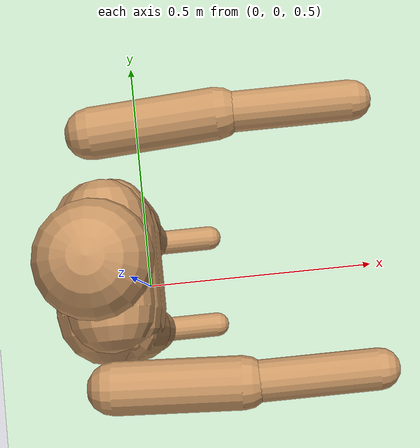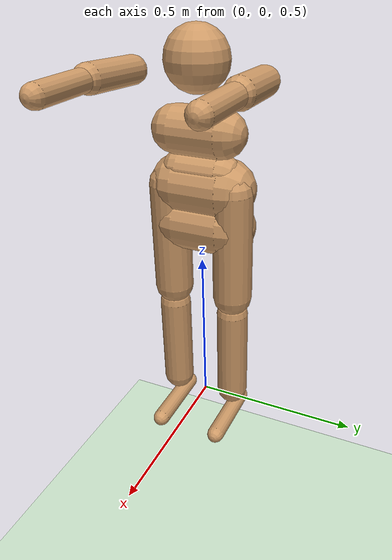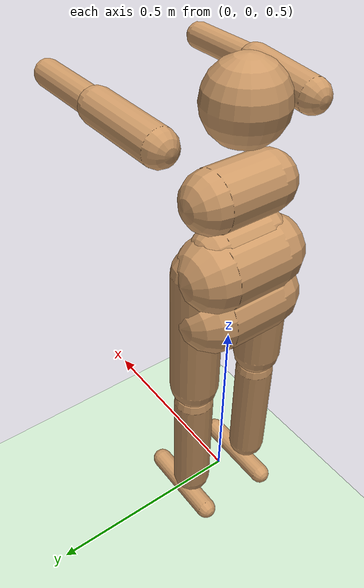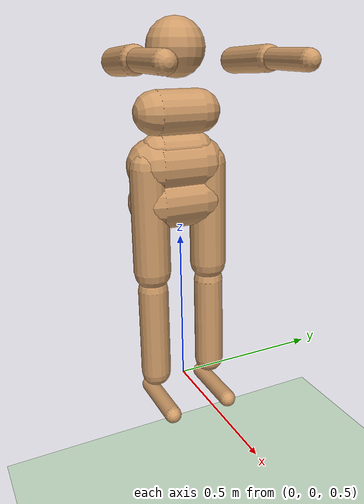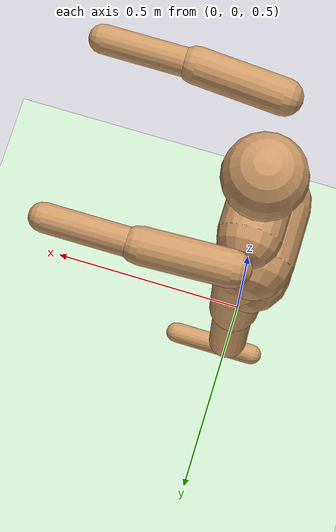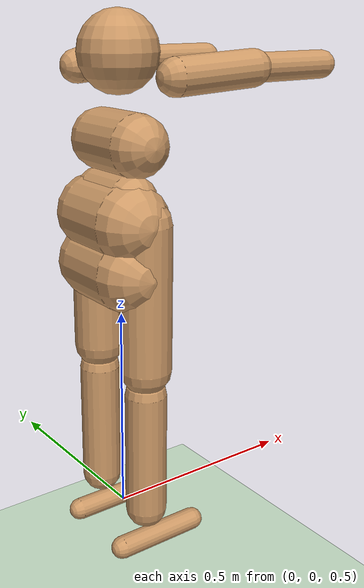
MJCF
<mujoco model="humanoid_squat">
            <compiler angle="degree" inertiafromgeom="true"/>
            <default>
                <joint armature="1" damping="1" limited="true"/>
                <geom friction="1 0.1 0.1" rgba="0.8 0.6 0.4 1"/>
            </default>

            <worldbody>
                <light cutoff="100" diffuse="1 1 1" dir="-0 0 -1.3" directional="true" exponent="1" pos="0 0 1.3" specular=".1 .1 .1"/>
                <geom name="floor" pos="0 0 0" size="40 40 40" type="plane" rgba="0.8 0.9 0.8 1"/>

                <body name="torso1" pos="0 0 1.4">
                    <geom name="torso1" type="capsule" size="0.07 0.1" fromto="0 -.07 0 0 .07 0"/>
                    <geom name="head" type="sphere" pos="0 0 .19" size="0.09"/>
                    <geom name="uwaist" type="capsule" size="0.06 0.06" fromto="-.01 -.06 -.12 -.01 .06 -.12"/>
                    <geom name="lwaist" type="capsule" size="0.06 0.06" fromto="-.01 -.06 -.24 -.01 .06 -.24"/>
                    <geom name="butt" type="capsule" size="0.09 0.07" fromto="-.02 -.07 -.28 -.02 .07 -.28"/>

                    <joint name="root" type="free"/>

                    <!-- Arms -->
                    <body name="larm" pos="0 0.18 .14">
                        <geom name="larm" type="capsule" size="0.04 0.1" fromto=".01 .01 .01 .2 .02 .02"/>
                        <joint name="larm" type="ball" pos="0 0 0" range="-30 30"/>

                        <body name="lforearm" pos=".2 .02 .02">
                            <geom name="lforearm" type="capsule" size="0.031 0.1" fromto="0 0 0 .2 0 0"/>
                            <joint name="lforearm" type="hinge" pos="0 0 0" axis="0 1 0" range="-90 50"/>
                        </body>
                    </body>

                    <body name="rarm" pos="0 -0.18 .14">
                        <geom name="rarm" type="capsule" size="0.04 0.1" fromto=".01 -.01 .01 .2 -.02 .02"/>
                        <joint name="rarm" type="ball" pos="0 0 0" range="-30 30"/>

                        <body name="rforearm" pos=".2 -.02 .02">
                            <geom name="rforearm" type="capsule" size="0.031 0.1" fromto="0 0 0 .2 0 0"/>
                            <joint name="rforearm" type="hinge" pos="0 0 0" axis="0 1 0" range="-90 50"/>
                        </body>
                    </body>

                    <!-- Legs -->
                    <body name="pelvis" pos="0 0 -0.165">
                        <geom name="pelvis" type="capsule" size="0.09 0.07" fromto="-.02 -.07 0 -.02 .07 0"/>

                        <body name="lthigh" pos="0 0.1 0">
                            <geom name="lthigh" type="capsule" size="0.06 0.17" fromto="0 0 0 0 0 -.34"/>
                            <joint name="lthigh" type="ball" pos="0 0 0" range="-30 30"/>

                            <body name="lshin" pos="0 0 -.403">
                                <geom name="lshin" type="capsule" size="0.049 0.15" fromto="0 0 0 0 0 -.3"/>
                                <joint name="lshin" type="hinge" pos="0 0 0" axis="0 1 0" range="-150 0"/>

                                <body name="lfoot" pos="0 0 -.39">
                                    <geom name="lfoot" type="capsule" size="0.027 0.105" fromto="-.07 0 0 .14 0 0"/>
                                    <joint name="lfoot" type="ball" pos="0 0 0" range="-30 30"/>
                                </body>
                            </body>
                        </body>

                        <body name="rthigh" pos="0 -0.1 0">
                            <geom name="rthigh" type="capsule" size="0.06 0.17" fromto="0 0 0 0 0 -.34"/>
                            <joint name="rthigh" type="ball" pos="0 0 0" range="-30 30"/>

                            <body name="rshin" pos="0 0 -.403">
                                <geom name="rshin" type="capsule" size="0.049 0.15" fromto="0 0 0 0 0 -.3"/>
                                <joint name="rshin" type="hinge" pos="0 0 0" axis="0 1 0" range="-150 0"/>

                                <body name="rfoot" pos="0 0 -.39">
                                    <geom name="rfoot" type="capsule" size="0.027 0.105" fromto="-.07 0 0 .14 0 0"/>
                                    <joint name="rfoot" type="ball" pos="0 0 0" range="-30 30"/>
                                </body>
                            </body>
                        </body>
                    </body>
                </body>
            </worldbody>

            <actuator>
                <motor name="lthigh_motor" joint="lthigh" gear="150"/>
                <motor name="rthigh_motor" joint="rthigh" gear="150"/>
                <motor name="lshin_motor" joint="lshin" gear="150"/>
                <motor name="rshin_motor" joint="rshin" gear="150"/>
            </actuator>
        </mujoco>
